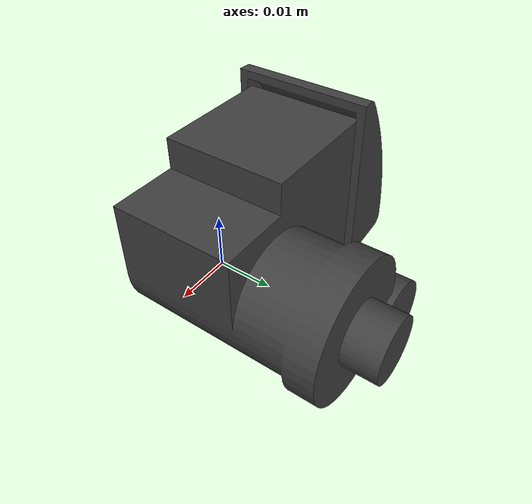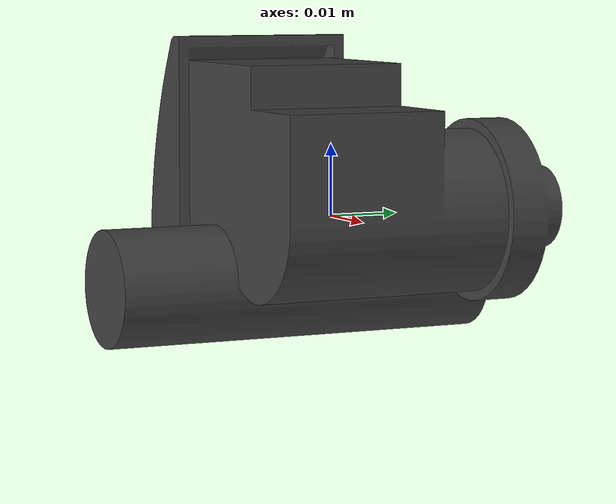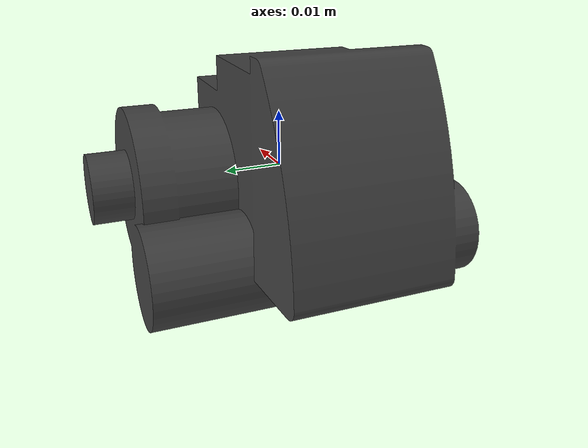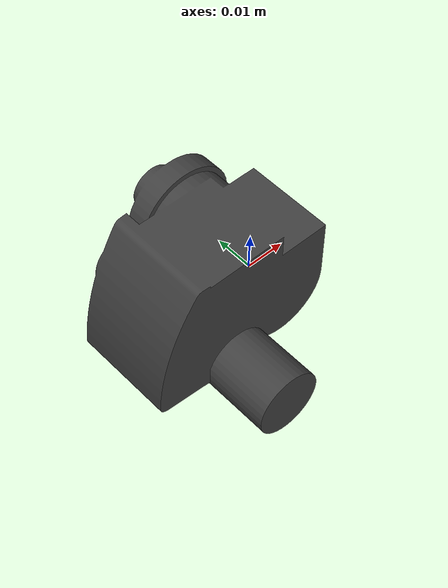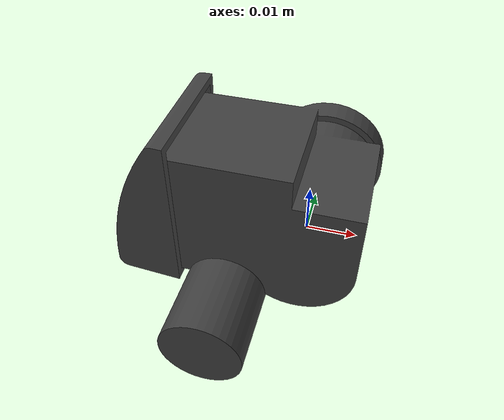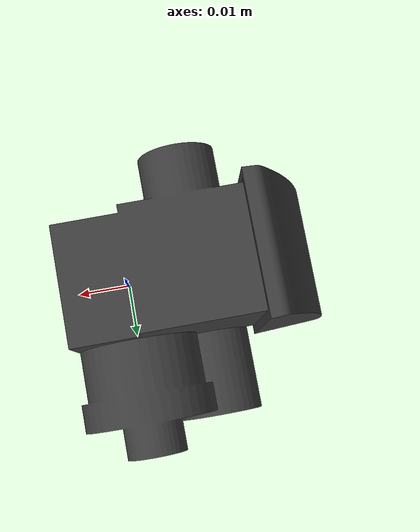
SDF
<?xml version="1.0" ?>
<sdf version="1.4">
  <model name="weazelmotor">
    <link name="motor">
      <self_collide>false</self_collide>
      <inertial>
        <pose>0 0 0 0 0 0</pose>
        <inertia>
          <ixx>0.00002149676</ixx>
          <ixy>0.00000224448</ixy>
          <ixz>-0.00000127349</ixz>
          <iyy>0.00002112172</iyy>
          <iyz>0.00000041827</iyz>
          <izz>0.00002531389</izz>
        </inertia>
        <mass>0.0865</mass>
      </inertial>
      <visual name="motor_geom_visual">
        <pose>0 0 0 0 0 0</pose>
        <geometry>
          <mesh>
            <uri>model://weazelmotor/meshes/visual/motor.dae</uri>
          </mesh>
        </geometry>
      </visual>
    </link>

    <!-- Fixed base -->
  </model>
</sdf>
